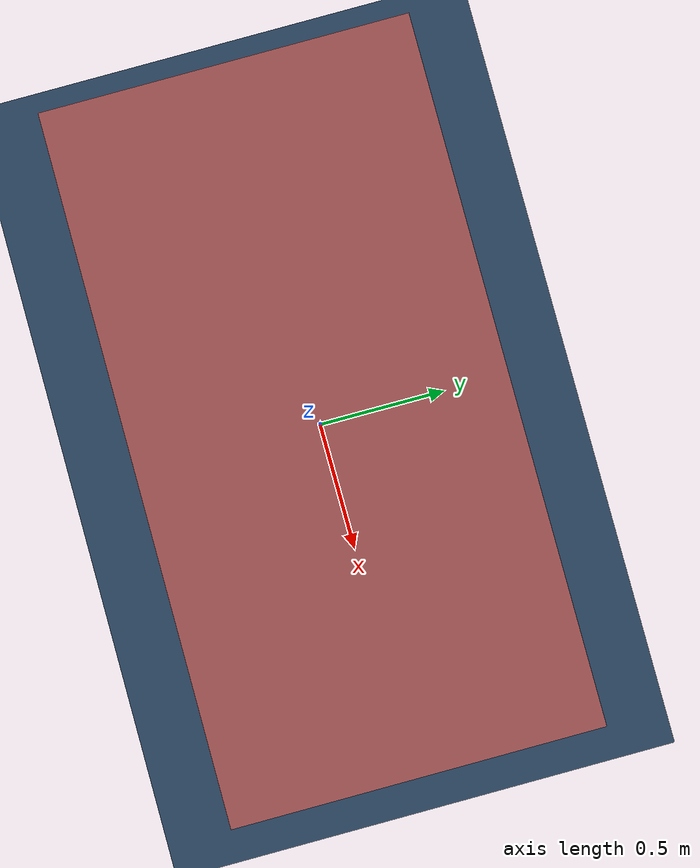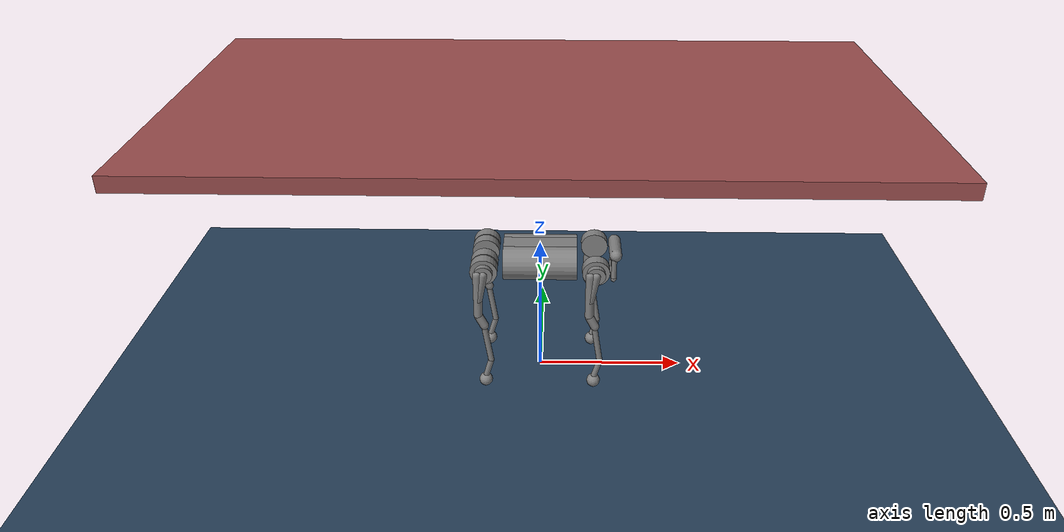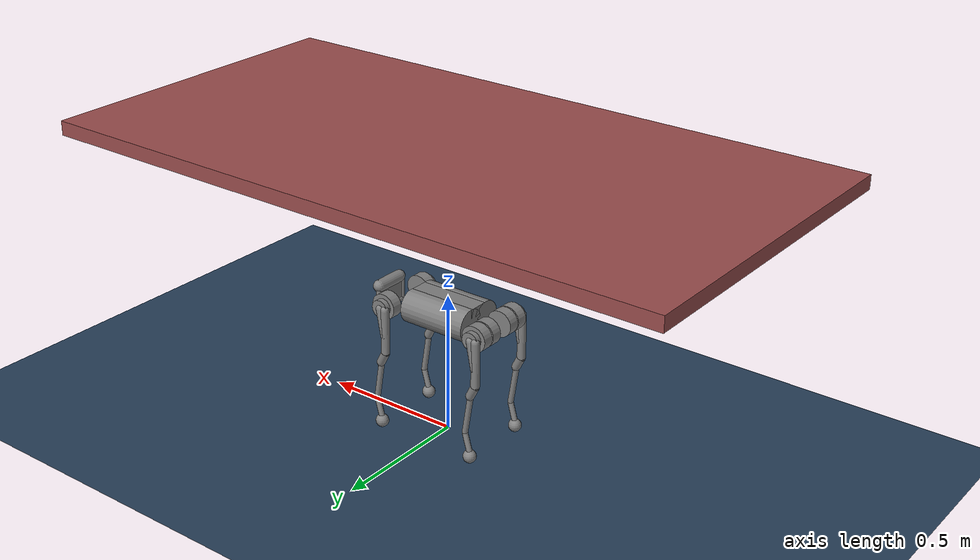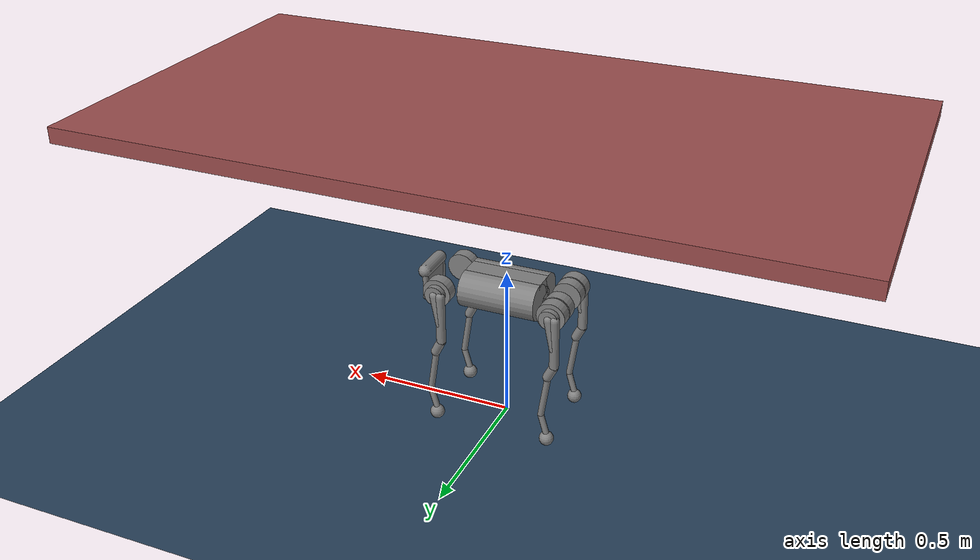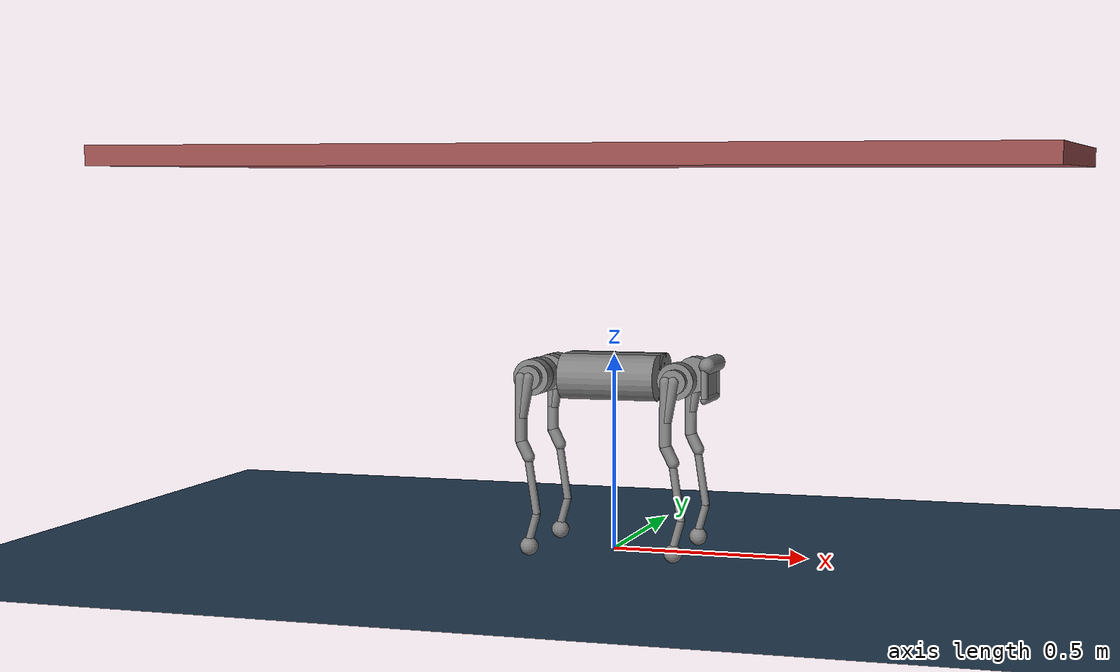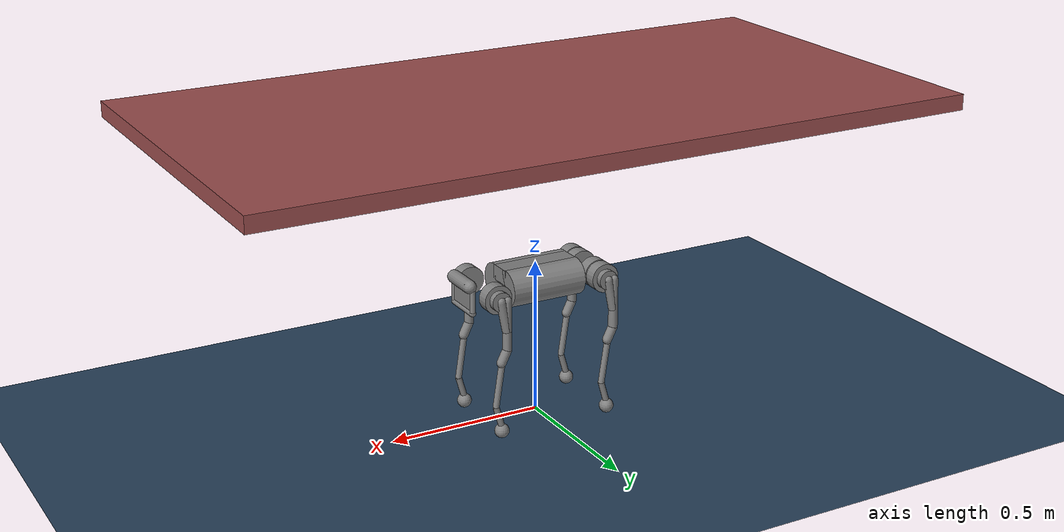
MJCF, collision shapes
<mujoco model="go1_platform">
  <compiler angle="radian" meshdir="assets" autolimits="true"/>

  <option solver="PGS" cone="elliptic" impratio="100" timestep=".002"/>

  <default>
    <default class="go1">
      <geom friction="0.6" margin="0.001" condim="1"/>
      <joint axis="0 1 0" damping="2" armature="0.01" frictionloss="0.2"/>

      <default class="abduction">
        <joint axis="1 0 0" damping="1" range="-0.863 0.863"/>
        <motor ctrllimited="true" ctrlrange="-23.7 23.7" gear="1"/>
      </default>

      <default class="hip">
        <joint range="-0.686 4.501"/>
        <motor ctrllimited="true" ctrlrange="-23.7 23.7" gear="1"/>
      </default>

      <default class="knee">
        <joint range="-2.818 -0.888"/>
        <motor ctrllimited="true" ctrlrange="-35.55 35.55" gear="1"/>
      </default>

      <default class="visual">
        <geom type="mesh" contype="0" conaffinity="0" group="2" material="dark"/>
      </default>

      <default class="collision">
        <geom group="3" type="capsule"/>
        <default class="hip_left1">
          <geom size="0.046 0.02" pos="0 0.045 0" quat="1 1 0 0" type="cylinder"/>
        </default>

        <default class="hip_left2">
          <geom size="0.031 0.02" pos="0 0.065 0" quat="1 1 0 0" type="cylinder"/>
        </default>

        <default class="hip_left3">
          <geom size="0.046 0.02" quat="1 1 0 0" type="cylinder"/>
        </default>

        <default class="hip_right1">
          <geom size="0.046 0.02" pos="0 -0.045 0" quat="1 1 0 0" type="cylinder"/>
        </default>

        <default class="hip_right2">
          <geom size="0.031 0.02" pos="0 -0.065 0" quat="1 1 0 0" type="cylinder"/>
        </default>

        <default class="hip_right3">
          <geom size="0.046 0.02" quat="1 1 0 0" type="cylinder"/>
        </default>

        <default class="thigh1">
          <geom size="0.015" fromto="-0.02 0 0 -0.02 0 -0.16"/>
        </default>

        <default class="thigh2">
          <geom size="0.015" fromto="0 0 0 -0.02 0 -0.1"/>
        </default>

        <default class="thigh3">
          <geom size="0.015" fromto="-0.02 0 -0.16 0 0 -0.2"/>
        </default>

        <default class="calf1">
          <geom size="0.01" fromto="0 0 0 0.02 0 -0.13"/>
        </default>

        <default class="calf2">
          <geom size="0.01" fromto="0.02 0 -0.13 0 0 -0.2"/>
        </default>

        <default class="foot">
          <geom type="sphere" size="0.023" pos="0 0 -0.213" solimp="0.015 1 0.023" condim="6"
            friction="0.8 0.02 0.01"/>
        </default>

      </default>
    </default>
  </default>

  <asset>
    <texture name="grid" type="2d" builtin="checker" width="512" height="512" rgb1=".1 .2 .3" rgb2=".2 .3 .4"/>
    <material name="grid" texture="grid" texrepeat="1 1" texuniform="true" reflectance=".2"/>

    <material name="dark" rgba="0.2 0.2 0.2 1"/>
    <mesh class="go1" file="trunk.stl"/>
    <mesh class="go1" file="hip.stl"/>
    <mesh class="go1" file="thigh_mirror.stl"/>
    <mesh class="go1" file="calf.stl"/>
    <mesh class="go1" file="thigh.stl"/>
  </asset>

  <worldbody>
    <geom name="floor" size="0 0 .05" type="plane" material="grid" condim="3"/>
    <light name="spotlight" mode="targetbodycom" target="trunk" pos="0 0 3" dir="0 0 -1" ambient="0.05 0.05 0.05" cutoff="120"/>
    <!-- Go1 -->
    <body name="trunk" pos="0 0 0.445" childclass="go1">
      <camera name="tracking" mode="trackcom" pos="0 -1 0.8" xyaxes="1 0 0 0 1 1"/>
      <site name="head" pos="0.3 0 0" rgba="1 0 0 1" size="0.02" group="5"/>
      <inertial pos="0.0223 0.002 -0.0005" quat="-0.00342088 0.705204 0.000106698 0.708996" mass="5.204"
        diaginertia="0.0716565 0.0630105 0.0168101"/>
      <freejoint/>
      <geom class="visual" mesh="trunk"/>
      <geom class="collision" size="0.125 0.04 0.057" type="box"/>
      <geom class="collision" quat="1 0 1 0" pos="0 -0.04 0" size="0.058 0.125" type="cylinder"/>
      <geom class="collision" quat="1 0 1 0" pos="0 +0.04 0" size="0.058 0.125" type="cylinder"/>
      <geom class="collision" pos="0.25 0 0" size="0.005 0.06 0.05" type="box"/>
      <geom class="collision" pos="0.25 0.06 -0.01" size="0.009 0.035"/>
      <geom class="collision" pos="0.25 -0.06 -0.01" size="0.009 0.035"/>
      <geom class="collision" pos="0.25 0 -0.05" size="0.01 0.06" quat="1 1 0 0"/>
      <geom class="collision" pos="0.255 0 0.0355" size="0.021 0.052" quat="1 1 0 0"/>
      <site name="imu" pos="0 0 0"/>

      <!--FR-->
      <body name="FR_hip" pos="0.1881 -0.04675 0">
        <inertial pos="-0.0049166 0.00762615 -8.865e-05" quat="0.507341 0.514169 0.495027 0.482891" mass="0.68"
          diaginertia="0.000734064 0.000468438 0.000398719"/>
        <joint class="abduction" name="FR_hip_joint"/>
        <geom class="visual" mesh="hip" quat="1 0 0 0"/>
        <geom class="hip_right1"/>
        <geom class="hip_right2"/>

        <body name="FR_thigh" pos="0 -0.08 0">
          <inertial pos="-0.00304722 0.019315 -0.0305004" quat="0.65243 -0.0272313 0.0775126 0.753383" mass="1.009"
            diaginertia="0.00478717 0.00460903 0.000709268"/>
          <joint class="hip" name="FR_thigh_joint"/>
          <geom class="visual" mesh="thigh_mirror"/>
          <geom class="thigh1"/>
          <geom class="thigh2"/>
          <geom class="thigh3"/>

          <body name="FR_calf" pos="0 0 -0.213">
            <inertial pos="0.00429862 0.000976676 -0.146197" quat="0.691246 0.00357467 0.00511118 0.722592"
              mass="0.195862" diaginertia="0.00149767 0.00148468 3.58427e-05"/>
            <joint class="knee" name="FR_calf_joint"/>
            <geom class="visual" mesh="calf"/>
            <geom class="calf1"/>
            <geom class="calf2"/>
            <geom name="FR" class="foot"/>
            <site name="FR" pos="0 0 -0.213" type="sphere" size="0.023" group="5"/>
          </body>

        </body>
      </body>

      <!--FL-->
      <body name="FL_hip" pos="0.1881 0.04675 0">
        <inertial pos="-0.0049166 -0.00762615 -8.865e-05" quat="0.482891 0.495027 0.514169 0.507341" mass="0.68"
          diaginertia="0.000734064 0.000468438 0.000398719"/>
        <joint class="abduction" name="FL_hip_joint"/>
        <geom class="visual" mesh="hip"/>
        <geom class="hip_left1"/>
        <geom class="hip_left2"/>

        <body name="FL_thigh" pos="0 0.08 0">
          <inertial pos="-0.00304722 -0.019315 -0.0305004" quat="0.753383 0.0775126 -0.0272313 0.65243" mass="1.009"
            diaginertia="0.00478717 0.00460903 0.000709268"/>
          <joint class="hip" name="FL_thigh_joint"/>
          <geom class="visual" mesh="thigh"/>
          <geom class="thigh1"/>
          <geom class="thigh2"/>
          <geom class="thigh3"/>

          <body name="FL_calf" pos="0 0 -0.213">
            <inertial pos="0.00429862 0.000976676 -0.146197" quat="0.691246 0.00357467 0.00511118 0.722592"
              mass="0.195862" diaginertia="0.00149767 0.00148468 3.58427e-05"/>
            <joint class="knee" name="FL_calf_joint"/>
            <geom class="visual" mesh="calf"/>
            <geom class="calf1"/>
            <geom class="calf2"/>
            <geom name="FL" class="foot"/>
            <site name="FL" pos="0 0 -0.213" type="sphere" size="0.023" group="5"/>
          </body>

        </body>
      </body>

      <!--RR-->
      <body name="RR_hip" pos="-0.1881 -0.04675 0">
        <inertial pos="0.0049166 0.00762615 -8.865e-05" quat="0.495027 0.482891 0.507341 0.514169" mass="0.68"
          diaginertia="0.000734064 0.000468438 0.000398719"/>
        <joint class="abduction" name="RR_hip_joint"/>
        <geom class="visual" quat="0 0 0 -1" mesh="hip"/>
        <geom class="hip_right1"/>
        <geom class="hip_right2"/>
        <geom class="hip_right3"/>

        <body name="RR_thigh" pos="0 -0.08 0">
          <inertial pos="-0.00304722 0.019315 -0.0305004" quat="0.65243 -0.0272313 0.0775126 0.753383" mass="1.009"
            diaginertia="0.00478717 0.00460903 0.000709268"/>
          <joint class="hip" name="RR_thigh_joint"/>
          <geom class="visual" mesh="thigh_mirror"/>
          <geom class="thigh1"/>
          <geom class="thigh2"/>
          <geom class="thigh3"/>

          <body name="RR_calf" pos="0 0 -0.213">
            <inertial pos="0.00429862 0.000976676 -0.146197" quat="0.691246 0.00357467 0.00511118 0.722592"
              mass="0.195862" diaginertia="0.00149767 0.00148468 3.58427e-05"/>
            <joint class="knee" name="RR_calf_joint"/>
            <geom class="visual" mesh="calf"/>
            <geom class="calf1"/>
            <geom class="calf2"/>
            <geom name="RR" class="foot"/>
            <site name="RR" pos="0 0 -0.213" type="sphere" size="0.023" group="5"/>
          </body>

        </body>
      </body>

      <!--RL-->
      <body name="RL_hip" pos="-0.1881 0.04675 0">
        <inertial pos="0.0049166 -0.00762615 -8.865e-05" quat="0.514169 0.507341 0.482891 0.495027" mass="0.68"
          diaginertia="0.000734064 0.000468438 0.000398719"/>
        <joint class="abduction" name="RL_hip_joint"/>
        <geom class="visual" quat="0 0 1 0" mesh="hip"/>
        <geom class="hip_left1"/>
        <geom class="hip_left2"/>
        <geom class="hip_left3"/>

        <body name="RL_thigh" pos="0 0.08 0">
          <inertial pos="-0.00304722 -0.019315 -0.0305004" quat="0.753383 0.0775126 -0.0272313 0.65243" mass="1.009"
            diaginertia="0.00478717 0.00460903 0.000709268"/>
          <joint class="hip" name="RL_thigh_joint"/>
          <geom class="visual" mesh="thigh"/>
          <geom class="thigh1"/>
          <geom class="thigh2"/>
          <geom class="thigh3"/>

          <body name="RL_calf" pos="0 0 -0.213">
            <inertial pos="0.00429862 0.000976676 -0.146197" quat="0.691246 0.00357467 0.00511118 0.722592"
              mass="0.195862" diaginertia="0.00149767 0.00148468 3.58427e-05"/>
            <joint class="knee" name="RL_calf_joint"/>
            <geom class="visual" mesh="calf"/>
            <geom class="calf1"/>
            <geom class="calf2"/>
            <geom name="RL" class="foot"/>
            <site name="RL" pos="0 0 -0.213" type="sphere" size="0.023" group="5"/>
          </body>

        </body>
      </body>
    </body>

    <!-- Platform -->
     <body name="platform" pos="0 0 1" >
        <inertial pos="0 0 0" mass="1" diaginertia="0.5 0.5 0.5"/>
        <joint name="platform_slide" type="slide" axis="0 1 0" damping="1000"/>
        <joint name="platform_pitch" type="hinge" axis="0 1 0" damping="1000"/>
        <geom name="platform.geom" type="box" size="1.15 0.6 0.025" rgba="0.6 0.3 0.3 1"/>
    </body>
  </worldbody>

  <sensor>
      <!--IMU sensors-->
      <accelerometer name="lin_acc_sensor" site="imu"/>
      <gyro name="ang_vel_sensor" site="imu"/>

      <!--Foot contact sensors-->
      <touch name="touch_FR" site="FR"/>
      <touch name="touch_FL" site="FL"/>
      <touch name="touch_RR" site="RR"/>
      <touch name="touch_RL" site="RL"/>
  </sensor>

  <actuator>
    <motor class="abduction" name="FR_hip" joint="FR_hip_joint"/>
    <motor class="hip" name="FR_thigh" joint="FR_thigh_joint"/>
    <motor class="knee" name="FR_calf" joint="FR_calf_joint"/>

    <motor class="abduction" name="FL_hip" joint="FL_hip_joint"/>
    <motor class="hip" name="FL_thigh" joint="FL_thigh_joint"/>
    <motor class="knee" name="FL_calf" joint="FL_calf_joint"/>

    <motor class="abduction" name="RR_hip" joint="RR_hip_joint"/>
    <motor class="hip" name="RR_thigh" joint="RR_thigh_joint"/>
    <motor class="knee" name="RR_calf" joint="RR_calf_joint"/>

    <motor class="abduction" name="RL_hip" joint="RL_hip_joint"/>
    <motor class="hip" name="RL_thigh" joint="RL_thigh_joint"/>
    <motor class="knee" name="RL_calf" joint="RL_calf_joint"/>

    <!-- platform -->
    <position name="slide_motor" joint="platform_slide" kp="10000" kv="200"/>
    <position name="pitch_motor" joint="platform_pitch" kp="10000" kv="200"/>
  </actuator>

  <!-- qpos="x, y, z, qw, qx, qy, qz, hip_FR, thigh_FR, calf_FR, hip_FL, thigh_FL, calf_FL, hip_RR, thigh_RR, calf_RR, hip_RL, thigh_RL, calf_RL, plat_pitch, plat_sway" -->
  <!-- ctrl="hip_FR, thigh_FR, calf_FR, hip_FL, thigh_FL, calf_FL, hip_RR, thigh_RR, calf_RR, hip_RL, thigh_RL, calf_RL, plat_pitch, plat_sway" -->

  <keyframe>
    <!-- Fast start at center of treadmill -->

    <!-- Fast start at futher end of treadmill -->
    <key name="fast_start"
      qpos="0.5 0 1.27 1 0 0 0 0 0.9 -1.8 0 0.9 -1.8 0 0.9 -1.8 0 0.9 -1.8 0 0"
      ctrl="0 0 0 0 0 0 0 0 0 0 0 0 0 0"/>

    <key name="slow_start"
      qpos="0 0 1.0595703 1 0 0 0 -0.3 1.21 -2.818 0.3 1.21 -2.818 -0.3 1.21 -2.818 0.3 1.21 -2.818 0 0"
      ctrl="0 0 0 0 0 0 0 0 0 0 0 0 0 0"/>
  </keyframe>
</mujoco>
